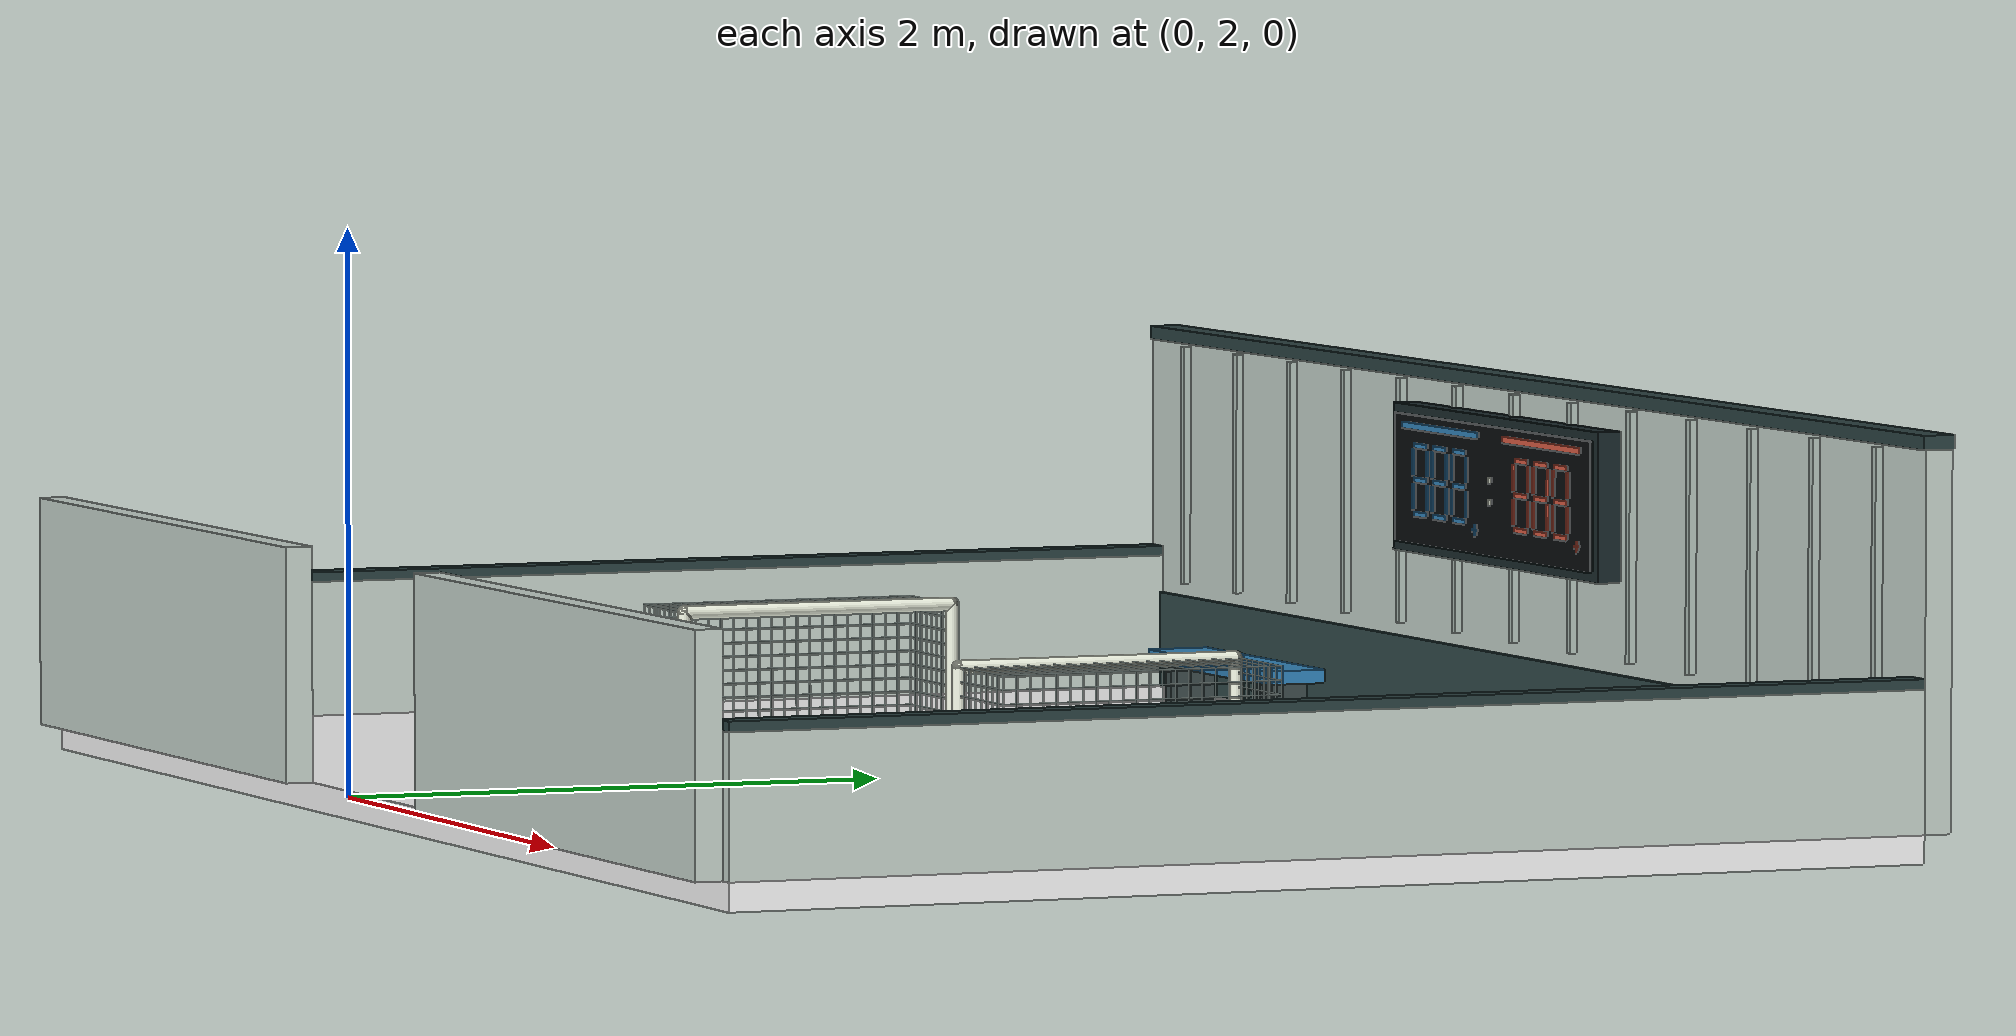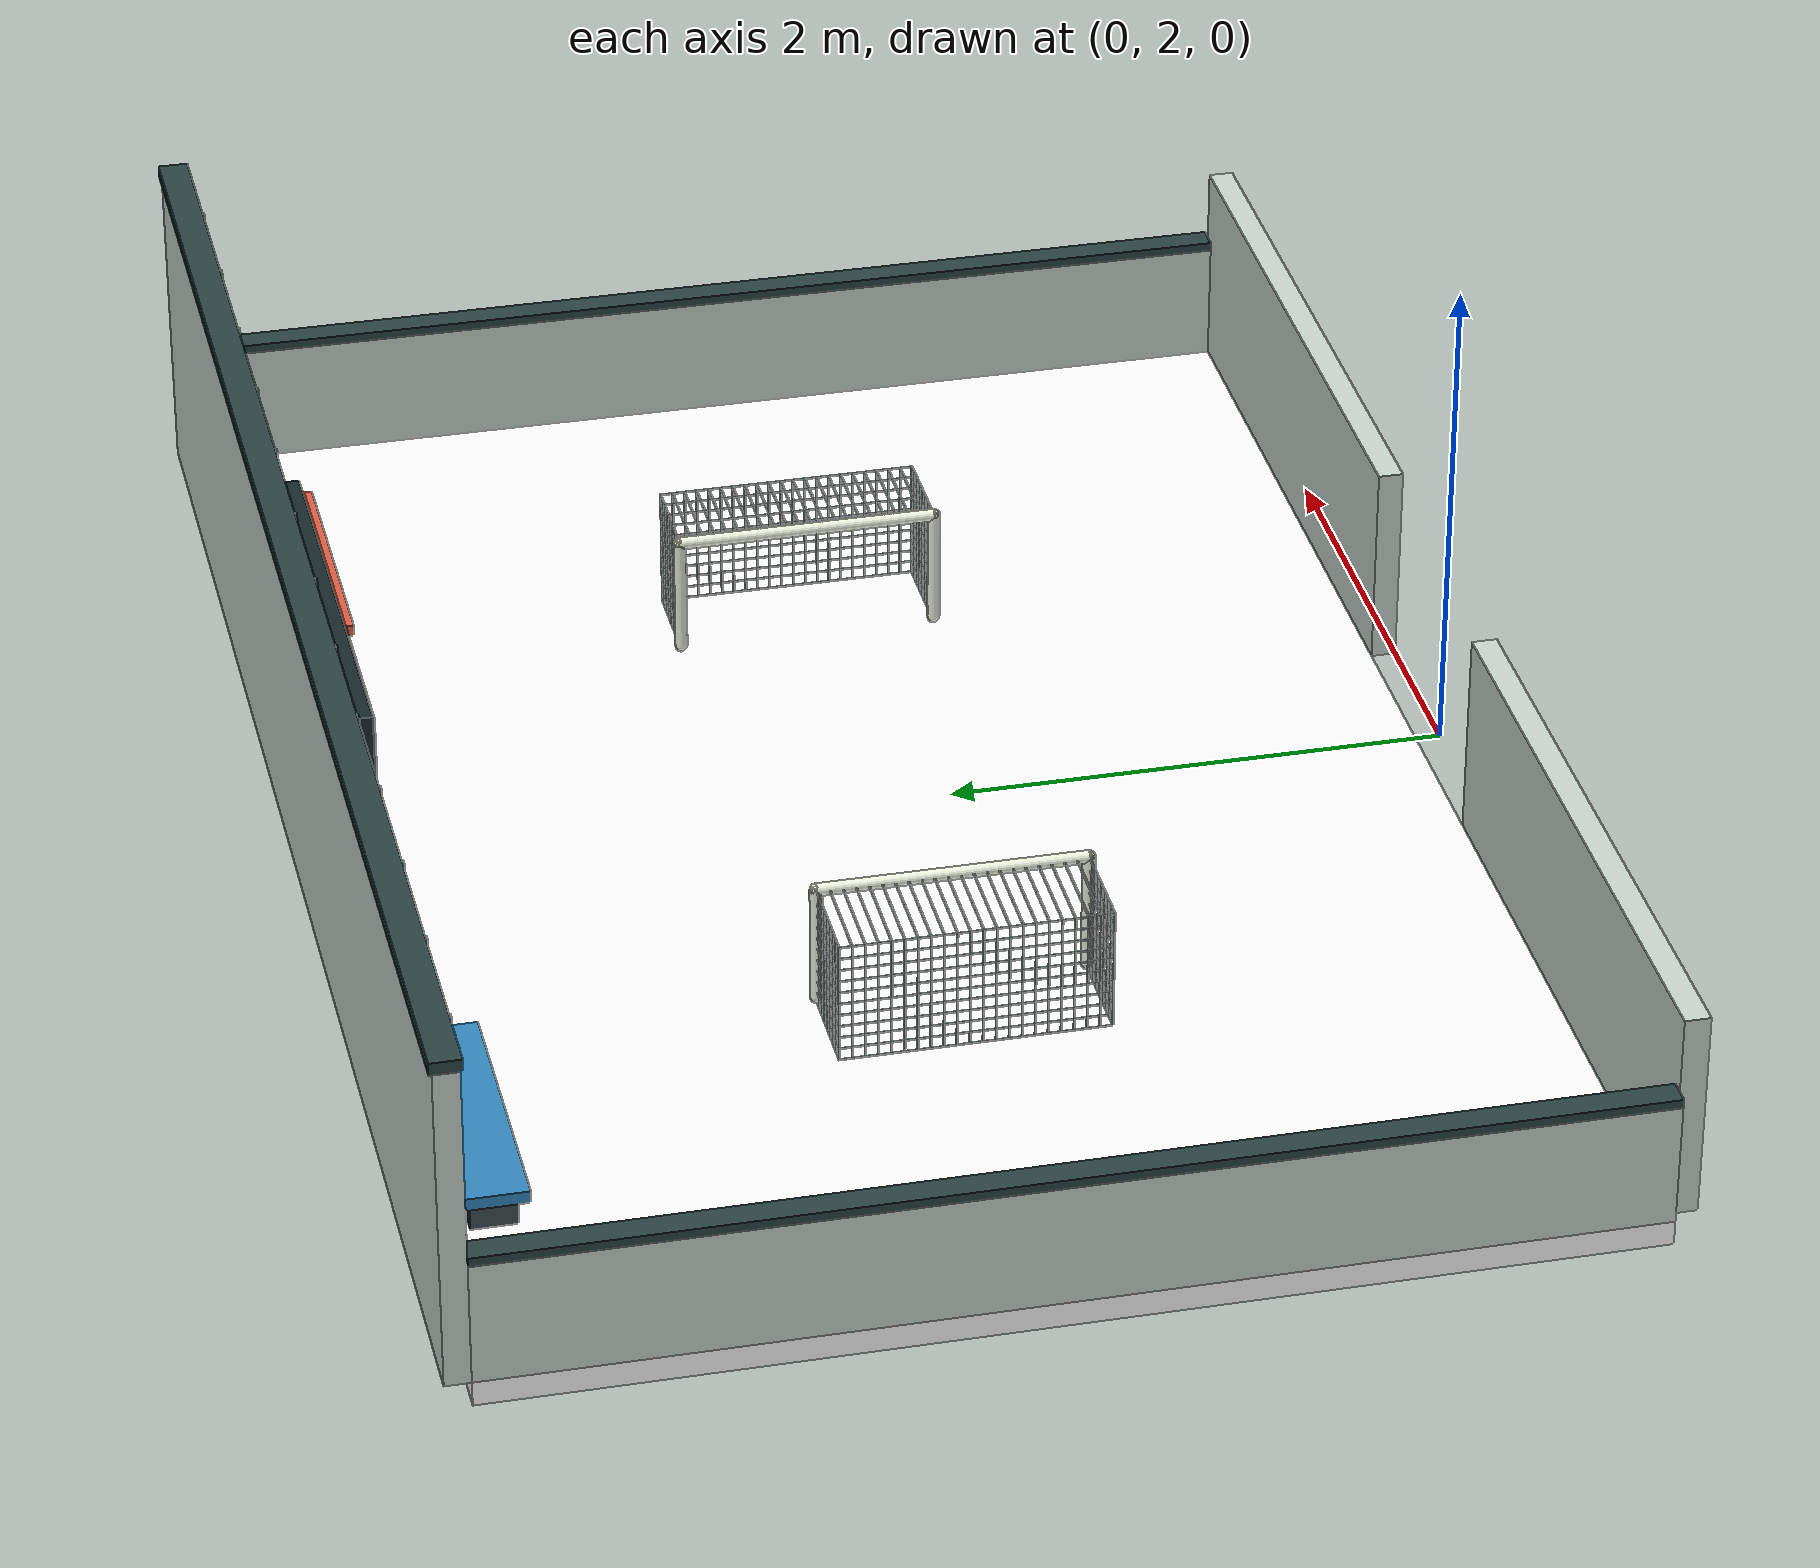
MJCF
<mujoco model="microduck_football_club">
  <worldbody>
    <geom name="football_floor" type="box" size="3.35 2.2 0.05" rgba="1 1 1 1" group="0" pos="0 4.3 -0.05" material="football_surface" />
    <site name="football_goal_blue" type="box" pos="-1.306 4.3 0" size=".5 .48 .006" quat="0 0 0 1" rgba="0 0 0 0" group="5" />
    <geom name="football_blue_post_-1" type="capsule" size="0.025" rgba="0.93 0.95 0.88 1" group="0" fromto="-1.3 3.775 0.025 -1.3 3.775 0.505" />
    <geom name="football_blue_post_1" type="capsule" size="0.025" rgba="0.93 0.95 0.88 1" group="0" fromto="-1.3 4.825 0.025 -1.3 4.825 0.505" />
    <geom name="football_blue_crossbar" type="capsule" size="0.025" rgba="0.93 0.95 0.88 1" group="0" fromto="-1.3 3.775 0.505 -1.3 4.825 0.505" />
    <geom name="football_blue_net_0" type="capsule" size="0.0025" rgba="0.73 0.81 0.79 1" group="0" fromto="-1.7 3.775 0.005 -1.7 3.775 0.505" friction=".4 .005 .0001" solref=".03 1" />
    <geom name="football_blue_net_1" type="capsule" size="0.0025" rgba="0.73 0.81 0.79 1" group="0" fromto="-1.3 3.775 0.505 -1.7 3.775 0.505" friction=".4 .005 .0001" solref=".03 1" />
    <geom name="football_blue_net_2" type="capsule" size="0.0025" rgba="0.73 0.81 0.79 1" group="0" fromto="-1.7 3.825 0.005 -1.7 3.825 0.505" friction=".4 .005 .0001" solref=".03 1" />
    <geom name="football_blue_net_3" type="capsule" size="0.0025" rgba="0.73 0.81 0.79 1" group="0" fromto="-1.3 3.825 0.505 -1.7 3.825 0.505" friction=".4 .005 .0001" solref=".03 1" />
    <geom name="football_blue_net_4" type="capsule" size="0.0025" rgba="0.73 0.81 0.79 1" group="0" fromto="-1.7 3.875 0.005 -1.7 3.875 0.505" friction=".4 .005 .0001" solref=".03 1" />
    <geom name="football_blue_net_5" type="capsule" size="0.0025" rgba="0.73 0.81 0.79 1" group="0" fromto="-1.3 3.875 0.505 -1.7 3.875 0.505" friction=".4 .005 .0001" solref=".03 1" />
    <geom name="football_blue_net_6" type="capsule" size="0.0025" rgba="0.73 0.81 0.79 1" group="0" fromto="-1.7 3.925 0.005 -1.7 3.925 0.505" friction=".4 .005 .0001" solref=".03 1" />
    <geom name="football_blue_net_7" type="capsule" size="0.0025" rgba="0.73 0.81 0.79 1" group="0" fromto="-1.3 3.925 0.505 -1.7 3.925 0.505" friction=".4 .005 .0001" solref=".03 1" />
    <geom name="football_blue_net_8" type="capsule" size="0.0025" rgba="0.73 0.81 0.79 1" group="0" fromto="-1.7 3.975 0.005 -1.7 3.975 0.505" friction=".4 .005 .0001" solref=".03 1" />
    <geom name="football_blue_net_9" type="capsule" size="0.0025" rgba="0.73 0.81 0.79 1" group="0" fromto="-1.3 3.975 0.505 -1.7 3.975 0.505" friction=".4 .005 .0001" solref=".03 1" />
    <geom name="football_blue_net_10" type="capsule" size="0.0025" rgba="0.73 0.81 0.79 1" group="0" fromto="-1.7 4.025 0.005 -1.7 4.025 0.505" friction=".4 .005 .0001" solref=".03 1" />
    <geom name="football_blue_net_11" type="capsule" size="0.0025" rgba="0.73 0.81 0.79 1" group="0" fromto="-1.3 4.025 0.505 -1.7 4.025 0.505" friction=".4 .005 .0001" solref=".03 1" />
    <geom name="football_blue_net_12" type="capsule" size="0.0025" rgba="0.73 0.81 0.79 1" group="0" fromto="-1.7 4.075 0.005 -1.7 4.075 0.505" friction=".4 .005 .0001" solref=".03 1" />
    <geom name="football_blue_net_13" type="capsule" size="0.0025" rgba="0.73 0.81 0.79 1" group="0" fromto="-1.3 4.075 0.505 -1.7 4.075 0.505" friction=".4 .005 .0001" solref=".03 1" />
    <geom name="football_blue_net_14" type="capsule" size="0.0025" rgba="0.73 0.81 0.79 1" group="0" fromto="-1.7 4.125 0.005 -1.7 4.125 0.505" friction=".4 .005 .0001" solref=".03 1" />
    <geom name="football_blue_net_15" type="capsule" size="0.0025" rgba="0.73 0.81 0.79 1" group="0" fromto="-1.3 4.125 0.505 -1.7 4.125 0.505" friction=".4 .005 .0001" solref=".03 1" />
    <geom name="football_blue_net_16" type="capsule" size="0.0025" rgba="0.73 0.81 0.79 1" group="0" fromto="-1.7 4.175 0.005 -1.7 4.175 0.505" friction=".4 .005 .0001" solref=".03 1" />
    <geom name="football_blue_net_17" type="capsule" size="0.0025" rgba="0.73 0.81 0.79 1" group="0" fromto="-1.3 4.175 0.505 -1.7 4.175 0.505" friction=".4 .005 .0001" solref=".03 1" />
    <geom name="football_blue_net_18" type="capsule" size="0.0025" rgba="0.73 0.81 0.79 1" group="0" fromto="-1.7 4.225 0.005 -1.7 4.225 0.505" friction=".4 .005 .0001" solref=".03 1" />
    <geom name="football_blue_net_19" type="capsule" size="0.0025" rgba="0.73 0.81 0.79 1" group="0" fromto="-1.3 4.225 0.505 -1.7 4.225 0.505" friction=".4 .005 .0001" solref=".03 1" />
    <geom name="football_blue_net_20" type="capsule" size="0.0025" rgba="0.73 0.81 0.79 1" group="0" fromto="-1.7 4.275 0.005 -1.7 4.275 0.505" friction=".4 .005 .0001" solref=".03 1" />
    <geom name="football_blue_net_21" type="capsule" size="0.0025" rgba="0.73 0.81 0.79 1" group="0" fromto="-1.3 4.275 0.505 -1.7 4.275 0.505" friction=".4 .005 .0001" solref=".03 1" />
    <geom name="football_blue_net_22" type="capsule" size="0.0025" rgba="0.73 0.81 0.79 1" group="0" fromto="-1.7 4.325 0.005 -1.7 4.325 0.505" friction=".4 .005 .0001" solref=".03 1" />
    <geom name="football_blue_net_23" type="capsule" size="0.0025" rgba="0.73 0.81 0.79 1" group="0" fromto="-1.3 4.325 0.505 -1.7 4.325 0.505" friction=".4 .005 .0001" solref=".03 1" />
    <geom name="football_blue_net_24" type="capsule" size="0.0025" rgba="0.73 0.81 0.79 1" group="0" fromto="-1.7 4.375 0.005 -1.7 4.375 0.505" friction=".4 .005 .0001" solref=".03 1" />
    <geom name="football_blue_net_25" type="capsule" size="0.0025" rgba="0.73 0.81 0.79 1" group="0" fromto="-1.3 4.375 0.505 -1.7 4.375 0.505" friction=".4 .005 .0001" solref=".03 1" />
    <geom name="football_blue_net_26" type="capsule" size="0.0025" rgba="0.73 0.81 0.79 1" group="0" fromto="-1.7 4.425 0.005 -1.7 4.425 0.505" friction=".4 .005 .0001" solref=".03 1" />
    <geom name="football_blue_net_27" type="capsule" size="0.0025" rgba="0.73 0.81 0.79 1" group="0" fromto="-1.3 4.425 0.505 -1.7 4.425 0.505" friction=".4 .005 .0001" solref=".03 1" />
    <geom name="football_blue_net_28" type="capsule" size="0.0025" rgba="0.73 0.81 0.79 1" group="0" fromto="-1.7 4.475 0.005 -1.7 4.475 0.505" friction=".4 .005 .0001" solref=".03 1" />
    <geom name="football_blue_net_29" type="capsule" size="0.0025" rgba="0.73 0.81 0.79 1" group="0" fromto="-1.3 4.475 0.505 -1.7 4.475 0.505" friction=".4 .005 .0001" solref=".03 1" />
    <geom name="football_blue_net_30" type="capsule" size="0.0025" rgba="0.73 0.81 0.79 1" group="0" fromto="-1.7 4.525 0.005 -1.7 4.525 0.505" friction=".4 .005 .0001" solref=".03 1" />
    <geom name="football_blue_net_31" type="capsule" size="0.0025" rgba="0.73 0.81 0.79 1" group="0" fromto="-1.3 4.525 0.505 -1.7 4.525 0.505" friction=".4 .005 .0001" solref=".03 1" />
    <geom name="football_blue_net_32" type="capsule" size="0.0025" rgba="0.73 0.81 0.79 1" group="0" fromto="-1.7 4.575 0.005 -1.7 4.575 0.505" friction=".4 .005 .0001" solref=".03 1" />
    <geom name="football_blue_net_33" type="capsule" size="0.0025" rgba="0.73 0.81 0.79 1" group="0" fromto="-1.3 4.575 0.505 -1.7 4.575 0.505" friction=".4 .005 .0001" solref=".03 1" />
    <geom name="football_blue_net_34" type="capsule" size="0.0025" rgba="0.73 0.81 0.79 1" group="0" fromto="-1.7 4.625 0.005 -1.7 4.625 0.505" friction=".4 .005 .0001" solref=".03 1" />
    <geom name="football_blue_net_35" type="capsule" size="0.0025" rgba="0.73 0.81 0.79 1" group="0" fromto="-1.3 4.625 0.505 -1.7 4.625 0.505" friction=".4 .005 .0001" solref=".03 1" />
    <geom name="football_blue_net_36" type="capsule" size="0.0025" rgba="0.73 0.81 0.79 1" group="0" fromto="-1.7 4.675 0.005 -1.7 4.675 0.505" friction=".4 .005 .0001" solref=".03 1" />
    <geom name="football_blue_net_37" type="capsule" size="0.0025" rgba="0.73 0.81 0.79 1" group="0" fromto="-1.3 4.675 0.505 -1.7 4.675 0.505" friction=".4 .005 .0001" solref=".03 1" />
    <geom name="football_blue_net_38" type="capsule" size="0.0025" rgba="0.73 0.81 0.79 1" group="0" fromto="-1.7 4.725 0.005 -1.7 4.725 0.505" friction=".4 .005 .0001" solref=".03 1" />
    <geom name="football_blue_net_39" type="capsule" size="0.0025" rgba="0.73 0.81 0.79 1" group="0" fromto="-1.3 4.725 0.505 -1.7 4.725 0.505" friction=".4 .005 .0001" solref=".03 1" />
    <geom name="football_blue_net_40" type="capsule" size="0.0025" rgba="0.73 0.81 0.79 1" group="0" fromto="-1.7 4.775 0.005 -1.7 4.775 0.505" friction=".4 .005 .0001" solref=".03 1" />
    <geom name="football_blue_net_41" type="capsule" size="0.0025" rgba="0.73 0.81 0.79 1" group="0" fromto="-1.3 4.775 0.505 -1.7 4.775 0.505" friction=".4 .005 .0001" solref=".03 1" />
    <geom name="football_blue_net_42" type="capsule" size="0.0025" rgba="0.73 0.81 0.79 1" group="0" fromto="-1.7 4.825 0.005 -1.7 4.825 0.505" friction=".4 .005 .0001" solref=".03 1" />
    <geom name="football_blue_net_43" type="capsule" size="0.0025" rgba="0.73 0.81 0.79 1" group="0" fromto="-1.3 4.825 0.505 -1.7 4.825 0.505" friction=".4 .005 .0001" solref=".03 1" />
    <geom name="football_blue_net_44" type="capsule" size="0.0025" rgba="0.73 0.81 0.79 1" group="0" fromto="-1.7 3.775 0.005 -1.7 4.825 0.005" friction=".4 .005 .0001" solref=".03 1" />
    <geom name="football_blue_net_45" type="capsule" size="0.0025" rgba="0.73 0.81 0.79 1" group="0" fromto="-1.3 3.775 0.005 -1.7 3.775 0.005" friction=".4 .005 .0001" solref=".03 1" />
    <geom name="football_blue_net_46" type="capsule" size="0.0025" rgba="0.73 0.81 0.79 1" group="0" fromto="-1.3 4.825 0.005 -1.7 4.825 0.005" friction=".4 .005 .0001" solref=".03 1" />
    <geom name="football_blue_net_47" type="capsule" size="0.0025" rgba="0.73 0.81 0.79 1" group="0" fromto="-1.7 3.775 0.055 -1.7 4.825 0.055" friction=".4 .005 .0001" solref=".03 1" />
    <geom name="football_blue_net_48" type="capsule" size="0.0025" rgba="0.73 0.81 0.79 1" group="0" fromto="-1.3 3.775 0.055 -1.7 3.775 0.055" friction=".4 .005 .0001" solref=".03 1" />
    <geom name="football_blue_net_49" type="capsule" size="0.0025" rgba="0.73 0.81 0.79 1" group="0" fromto="-1.3 4.825 0.055 -1.7 4.825 0.055" friction=".4 .005 .0001" solref=".03 1" />
    <geom name="football_blue_net_50" type="capsule" size="0.0025" rgba="0.73 0.81 0.79 1" group="0" fromto="-1.7 3.775 0.105 -1.7 4.825 0.105" friction=".4 .005 .0001" solref=".03 1" />
    <geom name="football_blue_net_51" type="capsule" size="0.0025" rgba="0.73 0.81 0.79 1" group="0" fromto="-1.3 3.775 0.105 -1.7 3.775 0.105" friction=".4 .005 .0001" solref=".03 1" />
    <geom name="football_blue_net_52" type="capsule" size="0.0025" rgba="0.73 0.81 0.79 1" group="0" fromto="-1.3 4.825 0.105 -1.7 4.825 0.105" friction=".4 .005 .0001" solref=".03 1" />
    <geom name="football_blue_net_53" type="capsule" size="0.0025" rgba="0.73 0.81 0.79 1" group="0" fromto="-1.7 3.775 0.155 -1.7 4.825 0.155" friction=".4 .005 .0001" solref=".03 1" />
    <geom name="football_blue_net_54" type="capsule" size="0.0025" rgba="0.73 0.81 0.79 1" group="0" fromto="-1.3 3.775 0.155 -1.7 3.775 0.155" friction=".4 .005 .0001" solref=".03 1" />
    <geom name="football_blue_net_55" type="capsule" size="0.0025" rgba="0.73 0.81 0.79 1" group="0" fromto="-1.3 4.825 0.155 -1.7 4.825 0.155" friction=".4 .005 .0001" solref=".03 1" />
    <geom name="football_blue_net_56" type="capsule" size="0.0025" rgba="0.73 0.81 0.79 1" group="0" fromto="-1.7 3.775 0.205 -1.7 4.825 0.205" friction=".4 .005 .0001" solref=".03 1" />
    <geom name="football_blue_net_57" type="capsule" size="0.0025" rgba="0.73 0.81 0.79 1" group="0" fromto="-1.3 3.775 0.205 -1.7 3.775 0.205" friction=".4 .005 .0001" solref=".03 1" />
    <geom name="football_blue_net_58" type="capsule" size="0.0025" rgba="0.73 0.81 0.79 1" group="0" fromto="-1.3 4.825 0.205 -1.7 4.825 0.205" friction=".4 .005 .0001" solref=".03 1" />
    <geom name="football_blue_net_59" type="capsule" size="0.0025" rgba="0.73 0.81 0.79 1" group="0" fromto="-1.7 3.775 0.255 -1.7 4.825 0.255" friction=".4 .005 .0001" solref=".03 1" />
    <geom name="football_blue_net_60" type="capsule" size="0.0025" rgba="0.73 0.81 0.79 1" group="0" fromto="-1.3 3.775 0.255 -1.7 3.775 0.255" friction=".4 .005 .0001" solref=".03 1" />
    <geom name="football_blue_net_61" type="capsule" size="0.0025" rgba="0.73 0.81 0.79 1" group="0" fromto="-1.3 4.825 0.255 -1.7 4.825 0.255" friction=".4 .005 .0001" solref=".03 1" />
    <geom name="football_blue_net_62" type="capsule" size="0.0025" rgba="0.73 0.81 0.79 1" group="0" fromto="-1.7 3.775 0.305 -1.7 4.825 0.305" friction=".4 .005 .0001" solref=".03 1" />
    <geom name="football_blue_net_63" type="capsule" size="0.0025" rgba="0.73 0.81 0.79 1" group="0" fromto="-1.3 3.775 0.305 -1.7 3.775 0.305" friction=".4 .005 .0001" solref=".03 1" />
    <geom name="football_blue_net_64" type="capsule" size="0.0025" rgba="0.73 0.81 0.79 1" group="0" fromto="-1.3 4.825 0.305 -1.7 4.825 0.305" friction=".4 .005 .0001" solref=".03 1" />
    <geom name="football_blue_net_65" type="capsule" size="0.0025" rgba="0.73 0.81 0.79 1" group="0" fromto="-1.7 3.775 0.355 -1.7 4.825 0.355" friction=".4 .005 .0001" solref=".03 1" />
    <geom name="football_blue_net_66" type="capsule" size="0.0025" rgba="0.73 0.81 0.79 1" group="0" fromto="-1.3 3.775 0.355 -1.7 3.775 0.355" friction=".4 .005 .0001" solref=".03 1" />
    <geom name="football_blue_net_67" type="capsule" size="0.0025" rgba="0.73 0.81 0.79 1" group="0" fromto="-1.3 4.825 0.355 -1.7 4.825 0.355" friction=".4 .005 .0001" solref=".03 1" />
    <geom name="football_blue_net_68" type="capsule" size="0.0025" rgba="0.73 0.81 0.79 1" group="0" fromto="-1.7 3.775 0.405 -1.7 4.825 0.405" friction=".4 .005 .0001" solref=".03 1" />
    <geom name="football_blue_net_69" type="capsule" size="0.0025" rgba="0.73 0.81 0.79 1" group="0" fromto="-1.3 3.775 0.405 -1.7 3.775 0.405" friction=".4 .005 .0001" solref=".03 1" />
    <geom name="football_blue_net_70" type="capsule" size="0.0025" rgba="0.73 0.81 0.79 1" group="0" fromto="-1.3 4.825 0.405 -1.7 4.825 0.405" friction=".4 .005 .0001" solref=".03 1" />
    <geom name="football_blue_net_71" type="capsule" size="0.0025" rgba="0.73 0.81 0.79 1" group="0" fromto="-1.7 3.775 0.455 -1.7 4.825 0.455" friction=".4 .005 .0001" solref=".03 1" />
    <geom name="football_blue_net_72" type="capsule" size="0.0025" rgba="0.73 0.81 0.79 1" group="0" fromto="-1.3 3.775 0.455 -1.7 3.775 0.455" friction=".4 .005 .0001" solref=".03 1" />
    <geom name="football_blue_net_73" type="capsule" size="0.0025" rgba="0.73 0.81 0.79 1" group="0" fromto="-1.3 4.825 0.455 -1.7 4.825 0.455" friction=".4 .005 .0001" solref=".03 1" />
    <geom name="football_blue_net_74" type="capsule" size="0.0025" rgba="0.73 0.81 0.79 1" group="0" fromto="-1.7 3.775 0.505 -1.7 4.825 0.505" friction=".4 .005 .0001" solref=".03 1" />
    <geom name="football_blue_net_75" type="capsule" size="0.0025" rgba="0.73 0.81 0.79 1" group="0" fromto="-1.3 3.775 0.505 -1.7 3.775 0.505" friction=".4 .005 .0001" solref=".03 1" />
    <geom name="football_blue_net_76" type="capsule" size="0.0025" rgba="0.73 0.81 0.79 1" group="0" fromto="-1.3 4.825 0.505 -1.7 4.825 0.505" friction=".4 .005 .0001" solref=".03 1" />
    <geom name="football_blue_net_77" type="capsule" size="0.0025" rgba="0.73 0.81 0.79 1" group="0" fromto="-1.35 3.775 0.005 -1.35 3.775 0.505" friction=".4 .005 .0001" solref=".03 1" />
    <geom name="football_blue_net_78" type="capsule" size="0.0025" rgba="0.73 0.81 0.79 1" group="0" fromto="-1.4 3.775 0.005 -1.4 3.775 0.505" friction=".4 .005 .0001" solref=".03 1" />
    <geom name="football_blue_net_79" type="capsule" size="0.0025" rgba="0.73 0.81 0.79 1" group="0" fromto="-1.45 3.775 0.005 -1.45 3.775 0.505" friction=".4 .005 .0001" solref=".03 1" />
    <geom name="football_blue_net_80" type="capsule" size="0.0025" rgba="0.73 0.81 0.79 1" group="0" fromto="-1.5 3.775 0.005 -1.5 3.775 0.505" friction=".4 .005 .0001" solref=".03 1" />
    <geom name="football_blue_net_81" type="capsule" size="0.0025" rgba="0.73 0.81 0.79 1" group="0" fromto="-1.55 3.775 0.005 -1.55 3.775 0.505" friction=".4 .005 .0001" solref=".03 1" />
    <geom name="football_blue_net_82" type="capsule" size="0.0025" rgba="0.73 0.81 0.79 1" group="0" fromto="-1.6 3.775 0.005 -1.6 3.775 0.505" friction=".4 .005 .0001" solref=".03 1" />
    <geom name="football_blue_net_83" type="capsule" size="0.0025" rgba="0.73 0.81 0.79 1" group="0" fromto="-1.65 3.775 0.005 -1.65 3.775 0.505" friction=".4 .005 .0001" solref=".03 1" />
    <geom name="football_blue_net_84" type="capsule" size="0.0025" rgba="0.73 0.81 0.79 1" group="0" fromto="-1.35 4.825 0.005 -1.35 4.825 0.505" friction=".4 .005 .0001" solref=".03 1" />
    <geom name="football_blue_net_85" type="capsule" size="0.0025" rgba="0.73 0.81 0.79 1" group="0" fromto="-1.4 4.825 0.005 -1.4 4.825 0.505" friction=".4 .005 .0001" solref=".03 1" />
    <geom name="football_blue_net_86" type="capsule" size="0.0025" rgba="0.73 0.81 0.79 1" group="0" fromto="-1.45 4.825 0.005 -1.45 4.825 0.505" friction=".4 .005 .0001" solref=".03 1" />
    <geom name="football_blue_net_87" type="capsule" size="0.0025" rgba="0.73 0.81 0.79 1" group="0" fromto="-1.5 4.825 0.005 -1.5 4.825 0.505" friction=".4 .005 .0001" solref=".03 1" />
    <geom name="football_blue_net_88" type="capsule" size="0.0025" rgba="0.73 0.81 0.79 1" group="0" fromto="-1.55 4.825 0.005 -1.55 4.825 0.505" friction=".4 .005 .0001" solref=".03 1" />
    <geom name="football_blue_net_89" type="capsule" size="0.0025" rgba="0.73 0.81 0.79 1" group="0" fromto="-1.6 4.825 0.005 -1.6 4.825 0.505" friction=".4 .005 .0001" solref=".03 1" />
    <geom name="football_blue_net_90" type="capsule" size="0.0025" rgba="0.73 0.81 0.79 1" group="0" fromto="-1.65 4.825 0.005 -1.65 4.825 0.505" friction=".4 .005 .0001" solref=".03 1" />
    <site name="football_goal_coral" type="box" pos="1.306 4.3 0" size=".5 .48 .006" quat="1 0 0 0" rgba="0 0 0 0" group="5" />
    <geom name="football_coral_post_-1" type="capsule" size="0.025" rgba="0.93 0.95 0.88 1" group="0" fromto="1.3 3.775 0.025 1.3 3.775 0.505" />
    <geom name="football_coral_post_1" type="capsule" size="0.025" rgba="0.93 0.95 0.88 1" group="0" fromto="1.3 4.825 0.025 1.3 4.825 0.505" />
    <geom name="football_coral_crossbar" type="capsule" size="0.025" rgba="0.93 0.95 0.88 1" group="0" fromto="1.3 3.775 0.505 1.3 4.825 0.505" />
    <geom name="football_coral_net_0" type="capsule" size="0.0025" rgba="0.73 0.81 0.79 1" group="0" fromto="1.7 3.775 0.005 1.7 3.775 0.505" friction=".4 .005 .0001" solref=".03 1" />
    <geom name="football_coral_net_1" type="capsule" size="0.0025" rgba="0.73 0.81 0.79 1" group="0" fromto="1.3 3.775 0.505 1.7 3.775 0.505" friction=".4 .005 .0001" solref=".03 1" />
    <geom name="football_coral_net_2" type="capsule" size="0.0025" rgba="0.73 0.81 0.79 1" group="0" fromto="1.7 3.825 0.005 1.7 3.825 0.505" friction=".4 .005 .0001" solref=".03 1" />
    <geom name="football_coral_net_3" type="capsule" size="0.0025" rgba="0.73 0.81 0.79 1" group="0" fromto="1.3 3.825 0.505 1.7 3.825 0.505" friction=".4 .005 .0001" solref=".03 1" />
    <geom name="football_coral_net_4" type="capsule" size="0.0025" rgba="0.73 0.81 0.79 1" group="0" fromto="1.7 3.875 0.005 1.7 3.875 0.505" friction=".4 .005 .0001" solref=".03 1" />
    <geom name="football_coral_net_5" type="capsule" size="0.0025" rgba="0.73 0.81 0.79 1" group="0" fromto="1.3 3.875 0.505 1.7 3.875 0.505" friction=".4 .005 .0001" solref=".03 1" />
    <geom name="football_coral_net_6" type="capsule" size="0.0025" rgba="0.73 0.81 0.79 1" group="0" fromto="1.7 3.925 0.005 1.7 3.925 0.505" friction=".4 .005 .0001" solref=".03 1" />
    <geom name="football_coral_net_7" type="capsule" size="0.0025" rgba="0.73 0.81 0.79 1" group="0" fromto="1.3 3.925 0.505 1.7 3.925 0.505" friction=".4 .005 .0001" solref=".03 1" />
    <geom name="football_coral_net_8" type="capsule" size="0.0025" rgba="0.73 0.81 0.79 1" group="0" fromto="1.7 3.975 0.005 1.7 3.975 0.505" friction=".4 .005 .0001" solref=".03 1" />
    <geom name="football_coral_net_9" type="capsule" size="0.0025" rgba="0.73 0.81 0.79 1" group="0" fromto="1.3 3.975 0.505 1.7 3.975 0.505" friction=".4 .005 .0001" solref=".03 1" />
    <geom name="football_coral_net_10" type="capsule" size="0.0025" rgba="0.73 0.81 0.79 1" group="0" fromto="1.7 4.025 0.005 1.7 4.025 0.505" friction=".4 .005 .0001" solref=".03 1" />
    <geom name="football_coral_net_11" type="capsule" size="0.0025" rgba="0.73 0.81 0.79 1" group="0" fromto="1.3 4.025 0.505 1.7 4.025 0.505" friction=".4 .005 .0001" solref=".03 1" />
    <geom name="football_coral_net_12" type="capsule" size="0.0025" rgba="0.73 0.81 0.79 1" group="0" fromto="1.7 4.075 0.005 1.7 4.075 0.505" friction=".4 .005 .0001" solref=".03 1" />
    <geom name="football_coral_net_13" type="capsule" size="0.0025" rgba="0.73 0.81 0.79 1" group="0" fromto="1.3 4.075 0.505 1.7 4.075 0.505" friction=".4 .005 .0001" solref=".03 1" />
    <geom name="football_coral_net_14" type="capsule" size="0.0025" rgba="0.73 0.81 0.79 1" group="0" fromto="1.7 4.125 0.005 1.7 4.125 0.505" friction=".4 .005 .0001" solref=".03 1" />
    <geom name="football_coral_net_15" type="capsule" size="0.0025" rgba="0.73 0.81 0.79 1" group="0" fromto="1.3 4.125 0.505 1.7 4.125 0.505" friction=".4 .005 .0001" solref=".03 1" />
    <geom name="football_coral_net_16" type="capsule" size="0.0025" rgba="0.73 0.81 0.79 1" group="0" fromto="1.7 4.175 0.005 1.7 4.175 0.505" friction=".4 .005 .0001" solref=".03 1" />
    <geom name="football_coral_net_17" type="capsule" size="0.0025" rgba="0.73 0.81 0.79 1" group="0" fromto="1.3 4.175 0.505 1.7 4.175 0.505" friction=".4 .005 .0001" solref=".03 1" />
    <geom name="football_coral_net_18" type="capsule" size="0.0025" rgba="0.73 0.81 0.79 1" group="0" fromto="1.7 4.225 0.005 1.7 4.225 0.505" friction=".4 .005 .0001" solref=".03 1" />
    <geom name="football_coral_net_19" type="capsule" size="0.0025" rgba="0.73 0.81 0.79 1" group="0" fromto="1.3 4.225 0.505 1.7 4.225 0.505" friction=".4 .005 .0001" solref=".03 1" />
    <geom name="football_coral_net_20" type="capsule" size="0.0025" rgba="0.73 0.81 0.79 1" group="0" fromto="1.7 4.275 0.005 1.7 4.275 0.505" friction=".4 .005 .0001" solref=".03 1" />
    <geom name="football_coral_net_21" type="capsule" size="0.0025" rgba="0.73 0.81 0.79 1" group="0" fromto="1.3 4.275 0.505 1.7 4.275 0.505" friction=".4 .005 .0001" solref=".03 1" />
    <geom name="football_coral_net_22" type="capsule" size="0.0025" rgba="0.73 0.81 0.79 1" group="0" fromto="1.7 4.325 0.005 1.7 4.325 0.505" friction=".4 .005 .0001" solref=".03 1" />
    <geom name="football_coral_net_23" type="capsule" size="0.0025" rgba="0.73 0.81 0.79 1" group="0" fromto="1.3 4.325 0.505 1.7 4.325 0.505" friction=".4 .005 .0001" solref=".03 1" />
    <geom name="football_coral_net_24" type="capsule" size="0.0025" rgba="0.73 0.81 0.79 1" group="0" fromto="1.7 4.375 0.005 1.7 4.375 0.505" friction=".4 .005 .0001" solref=".03 1" />
    <geom name="football_coral_net_25" type="capsule" size="0.0025" rgba="0.73 0.81 0.79 1" group="0" fromto="1.3 4.375 0.505 1.7 4.375 0.505" friction=".4 .005 .0001" solref=".03 1" />
    <geom name="football_coral_net_26" type="capsule" size="0.0025" rgba="0.73 0.81 0.79 1" group="0" fromto="1.7 4.425 0.005 1.7 4.425 0.505" friction=".4 .005 .0001" solref=".03 1" />
    <geom name="football_coral_net_27" type="capsule" size="0.0025" rgba="0.73 0.81 0.79 1" group="0" fromto="1.3 4.425 0.505 1.7 4.425 0.505" friction=".4 .005 .0001" solref=".03 1" />
    <geom name="football_coral_net_28" type="capsule" size="0.0025" rgba="0.73 0.81 0.79 1" group="0" fromto="1.7 4.475 0.005 1.7 4.475 0.505" friction=".4 .005 .0001" solref=".03 1" />
    <geom name="football_coral_net_29" type="capsule" size="0.0025" rgba="0.73 0.81 0.79 1" group="0" fromto="1.3 4.475 0.505 1.7 4.475 0.505" friction=".4 .005 .0001" solref=".03 1" />
    <geom name="football_coral_net_30" type="capsule" size="0.0025" rgba="0.73 0.81 0.79 1" group="0" fromto="1.7 4.525 0.005 1.7 4.525 0.505" friction=".4 .005 .0001" solref=".03 1" />
    <geom name="football_coral_net_31" type="capsule" size="0.0025" rgba="0.73 0.81 0.79 1" group="0" fromto="1.3 4.525 0.505 1.7 4.525 0.505" friction=".4 .005 .0001" solref=".03 1" />
    <geom name="football_coral_net_32" type="capsule" size="0.0025" rgba="0.73 0.81 0.79 1" group="0" fromto="1.7 4.575 0.005 1.7 4.575 0.505" friction=".4 .005 .0001" solref=".03 1" />
    <geom name="football_coral_net_33" type="capsule" size="0.0025" rgba="0.73 0.81 0.79 1" group="0" fromto="1.3 4.575 0.505 1.7 4.575 0.505" friction=".4 .005 .0001" solref=".03 1" />
    <geom name="football_coral_net_34" type="capsule" size="0.0025" rgba="0.73 0.81 0.79 1" group="0" fromto="1.7 4.625 0.005 1.7 4.625 0.505" friction=".4 .005 .0001" solref=".03 1" />
    <geom name="football_coral_net_35" type="capsule" size="0.0025" rgba="0.73 0.81 0.79 1" group="0" fromto="1.3 4.625 0.505 1.7 4.625 0.505" friction=".4 .005 .0001" solref=".03 1" />
    <geom name="football_coral_net_36" type="capsule" size="0.0025" rgba="0.73 0.81 0.79 1" group="0" fromto="1.7 4.675 0.005 1.7 4.675 0.505" friction=".4 .005 .0001" solref=".03 1" />
    <geom name="football_coral_net_37" type="capsule" size="0.0025" rgba="0.73 0.81 0.79 1" group="0" fromto="1.3 4.675 0.505 1.7 4.675 0.505" friction=".4 .005 .0001" solref=".03 1" />
    <geom name="football_coral_net_38" type="capsule" size="0.0025" rgba="0.73 0.81 0.79 1" group="0" fromto="1.7 4.725 0.005 1.7 4.725 0.505" friction=".4 .005 .0001" solref=".03 1" />
    <geom name="football_coral_net_39" type="capsule" size="0.0025" rgba="0.73 0.81 0.79 1" group="0" fromto="1.3 4.725 0.505 1.7 4.725 0.505" friction=".4 .005 .0001" solref=".03 1" />
    <geom name="football_coral_net_40" type="capsule" size="0.0025" rgba="0.73 0.81 0.79 1" group="0" fromto="1.7 4.775 0.005 1.7 4.775 0.505" friction=".4 .005 .0001" solref=".03 1" />
    <geom name="football_coral_net_41" type="capsule" size="0.0025" rgba="0.73 0.81 0.79 1" group="0" fromto="1.3 4.775 0.505 1.7 4.775 0.505" friction=".4 .005 .0001" solref=".03 1" />
    <geom name="football_coral_net_42" type="capsule" size="0.0025" rgba="0.73 0.81 0.79 1" group="0" fromto="1.7 4.825 0.005 1.7 4.825 0.505" friction=".4 .005 .0001" solref=".03 1" />
    <geom name="football_coral_net_43" type="capsule" size="0.0025" rgba="0.73 0.81 0.79 1" group="0" fromto="1.3 4.825 0.505 1.7 4.825 0.505" friction=".4 .005 .0001" solref=".03 1" />
    <geom name="football_coral_net_44" type="capsule" size="0.0025" rgba="0.73 0.81 0.79 1" group="0" fromto="1.7 3.775 0.005 1.7 4.825 0.005" friction=".4 .005 .0001" solref=".03 1" />
    <geom name="football_coral_net_45" type="capsule" size="0.0025" rgba="0.73 0.81 0.79 1" group="0" fromto="1.3 3.775 0.005 1.7 3.775 0.005" friction=".4 .005 .0001" solref=".03 1" />
    <geom name="football_coral_net_46" type="capsule" size="0.0025" rgba="0.73 0.81 0.79 1" group="0" fromto="1.3 4.825 0.005 1.7 4.825 0.005" friction=".4 .005 .0001" solref=".03 1" />
    <geom name="football_coral_net_47" type="capsule" size="0.0025" rgba="0.73 0.81 0.79 1" group="0" fromto="1.7 3.775 0.055 1.7 4.825 0.055" friction=".4 .005 .0001" solref=".03 1" />
    <geom name="football_coral_net_48" type="capsule" size="0.0025" rgba="0.73 0.81 0.79 1" group="0" fromto="1.3 3.775 0.055 1.7 3.775 0.055" friction=".4 .005 .0001" solref=".03 1" />
    <geom name="football_coral_net_49" type="capsule" size="0.0025" rgba="0.73 0.81 0.79 1" group="0" fromto="1.3 4.825 0.055 1.7 4.825 0.055" friction=".4 .005 .0001" solref=".03 1" />
    <geom name="football_coral_net_50" type="capsule" size="0.0025" rgba="0.73 0.81 0.79 1" group="0" fromto="1.7 3.775 0.105 1.7 4.825 0.105" friction=".4 .005 .0001" solref=".03 1" />
    <geom name="football_coral_net_51" type="capsule" size="0.0025" rgba="0.73 0.81 0.79 1" group="0" fromto="1.3 3.775 0.105 1.7 3.775 0.105" friction=".4 .005 .0001" solref=".03 1" />
    <geom name="football_coral_net_52" type="capsule" size="0.0025" rgba="0.73 0.81 0.79 1" group="0" fromto="1.3 4.825 0.105 1.7 4.825 0.105" friction=".4 .005 .0001" solref=".03 1" />
    <geom name="football_coral_net_53" type="capsule" size="0.0025" rgba="0.73 0.81 0.79 1" group="0" fromto="1.7 3.775 0.155 1.7 4.825 0.155" friction=".4 .005 .0001" solref=".03 1" />
    <geom name="football_coral_net_54" type="capsule" size="0.0025" rgba="0.73 0.81 0.79 1" group="0" fromto="1.3 3.775 0.155 1.7 3.775 0.155" friction=".4 .005 .0001" solref=".03 1" />
    <geom name="football_coral_net_55" type="capsule" size="0.0025" rgba="0.73 0.81 0.79 1" group="0" fromto="1.3 4.825 0.155 1.7 4.825 0.155" friction=".4 .005 .0001" solref=".03 1" />
    <geom name="football_coral_net_56" type="capsule" size="0.0025" rgba="0.73 0.81 0.79 1" group="0" fromto="1.7 3.775 0.205 1.7 4.825 0.205" friction=".4 .005 .0001" solref=".03 1" />
    <geom name="football_coral_net_57" type="capsule" size="0.0025" rgba="0.73 0.81 0.79 1" group="0" fromto="1.3 3.775 0.205 1.7 3.775 0.205" friction=".4 .005 .0001" solref=".03 1" />
    <geom name="football_coral_net_58" type="capsule" size="0.0025" rgba="0.73 0.81 0.79 1" group="0" fromto="1.3 4.825 0.205 1.7 4.825 0.205" friction=".4 .005 .0001" solref=".03 1" />
    <geom name="football_coral_net_59" type="capsule" size="0.0025" rgba="0.73 0.81 0.79 1" group="0" fromto="1.7 3.775 0.255 1.7 4.825 0.255" friction=".4 .005 .0001" solref=".03 1" />
    <geom name="football_coral_net_60" type="capsule" size="0.0025" rgba="0.73 0.81 0.79 1" group="0" fromto="1.3 3.775 0.255 1.7 3.775 0.255" friction=".4 .005 .0001" solref=".03 1" />
    <geom name="football_coral_net_61" type="capsule" size="0.0025" rgba="0.73 0.81 0.79 1" group="0" fromto="1.3 4.825 0.255 1.7 4.825 0.255" friction=".4 .005 .0001" solref=".03 1" />
    <geom name="football_coral_net_62" type="capsule" size="0.0025" rgba="0.73 0.81 0.79 1" group="0" fromto="1.7 3.775 0.305 1.7 4.825 0.305" friction=".4 .005 .0001" solref=".03 1" />
    <geom name="football_coral_net_63" type="capsule" size="0.0025" rgba="0.73 0.81 0.79 1" group="0" fromto="1.3 3.775 0.305 1.7 3.775 0.305" friction=".4 .005 .0001" solref=".03 1" />
    <geom name="football_coral_net_64" type="capsule" size="0.0025" rgba="0.73 0.81 0.79 1" group="0" fromto="1.3 4.825 0.305 1.7 4.825 0.305" friction=".4 .005 .0001" solref=".03 1" />
    <geom name="football_coral_net_65" type="capsule" size="0.0025" rgba="0.73 0.81 0.79 1" group="0" fromto="1.7 3.775 0.355 1.7 4.825 0.355" friction=".4 .005 .0001" solref=".03 1" />
    <geom name="football_coral_net_66" type="capsule" size="0.0025" rgba="0.73 0.81 0.79 1" group="0" fromto="1.3 3.775 0.355 1.7 3.775 0.355" friction=".4 .005 .0001" solref=".03 1" />
    <geom name="football_coral_net_67" type="capsule" size="0.0025" rgba="0.73 0.81 0.79 1" group="0" fromto="1.3 4.825 0.355 1.7 4.825 0.355" friction=".4 .005 .0001" solref=".03 1" />
    <geom name="football_coral_net_68" type="capsule" size="0.0025" rgba="0.73 0.81 0.79 1" group="0" fromto="1.7 3.775 0.405 1.7 4.825 0.405" friction=".4 .005 .0001" solref=".03 1" />
    <geom name="football_coral_net_69" type="capsule" size="0.0025" rgba="0.73 0.81 0.79 1" group="0" fromto="1.3 3.775 0.405 1.7 3.775 0.405" friction=".4 .005 .0001" solref=".03 1" />
    <geom name="football_coral_net_70" type="capsule" size="0.0025" rgba="0.73 0.81 0.79 1" group="0" fromto="1.3 4.825 0.405 1.7 4.825 0.405" friction=".4 .005 .0001" solref=".03 1" />
    <geom name="football_coral_net_71" type="capsule" size="0.0025" rgba="0.73 0.81 0.79 1" group="0" fromto="1.7 3.775 0.455 1.7 4.825 0.455" friction=".4 .005 .0001" solref=".03 1" />
    <geom name="football_coral_net_72" type="capsule" size="0.0025" rgba="0.73 0.81 0.79 1" group="0" fromto="1.3 3.775 0.455 1.7 3.775 0.455" friction=".4 .005 .0001" solref=".03 1" />
    <geom name="football_coral_net_73" type="capsule" size="0.0025" rgba="0.73 0.81 0.79 1" group="0" fromto="1.3 4.825 0.455 1.7 4.825 0.455" friction=".4 .005 .0001" solref=".03 1" />
    <geom name="football_coral_net_74" type="capsule" size="0.0025" rgba="0.73 0.81 0.79 1" group="0" fromto="1.7 3.775 0.505 1.7 4.825 0.505" friction=".4 .005 .0001" solref=".03 1" />
    <geom name="football_coral_net_75" type="capsule" size="0.0025" rgba="0.73 0.81 0.79 1" group="0" fromto="1.3 3.775 0.505 1.7 3.775 0.505" friction=".4 .005 .0001" solref=".03 1" />
    <geom name="football_coral_net_76" type="capsule" size="0.0025" rgba="0.73 0.81 0.79 1" group="0" fromto="1.3 4.825 0.505 1.7 4.825 0.505" friction=".4 .005 .0001" solref=".03 1" />
    <geom name="football_coral_net_77" type="capsule" size="0.0025" rgba="0.73 0.81 0.79 1" group="0" fromto="1.35 3.775 0.005 1.35 3.775 0.505" friction=".4 .005 .0001" solref=".03 1" />
    <geom name="football_coral_net_78" type="capsule" size="0.0025" rgba="0.73 0.81 0.79 1" group="0" fromto="1.4 3.775 0.005 1.4 3.775 0.505" friction=".4 .005 .0001" solref=".03 1" />
    <geom name="football_coral_net_79" type="capsule" size="0.0025" rgba="0.73 0.81 0.79 1" group="0" fromto="1.45 3.775 0.005 1.45 3.775 0.505" friction=".4 .005 .0001" solref=".03 1" />
    <geom name="football_coral_net_80" type="capsule" size="0.0025" rgba="0.73 0.81 0.79 1" group="0" fromto="1.5 3.775 0.005 1.5 3.775 0.505" friction=".4 .005 .0001" solref=".03 1" />
    <geom name="football_coral_net_81" type="capsule" size="0.0025" rgba="0.73 0.81 0.79 1" group="0" fromto="1.55 3.775 0.005 1.55 3.775 0.505" friction=".4 .005 .0001" solref=".03 1" />
    <geom name="football_coral_net_82" type="capsule" size="0.0025" rgba="0.73 0.81 0.79 1" group="0" fromto="1.6 3.775 0.005 1.6 3.775 0.505" friction=".4 .005 .0001" solref=".03 1" />
    <geom name="football_coral_net_83" type="capsule" size="0.0025" rgba="0.73 0.81 0.79 1" group="0" fromto="1.65 3.775 0.005 1.65 3.775 0.505" friction=".4 .005 .0001" solref=".03 1" />
    <geom name="football_coral_net_84" type="capsule" size="0.0025" rgba="0.73 0.81 0.79 1" group="0" fromto="1.35 4.825 0.005 1.35 4.825 0.505" friction=".4 .005 .0001" solref=".03 1" />
    <geom name="football_coral_net_85" type="capsule" size="0.0025" rgba="0.73 0.81 0.79 1" group="0" fromto="1.4 4.825 0.005 1.4 4.825 0.505" friction=".4 .005 .0001" solref=".03 1" />
    <geom name="football_coral_net_86" type="capsule" size="0.0025" rgba="0.73 0.81 0.79 1" group="0" fromto="1.45 4.825 0.005 1.45 4.825 0.505" friction=".4 .005 .0001" solref=".03 1" />
    <geom name="football_coral_net_87" type="capsule" size="0.0025" rgba="0.73 0.81 0.79 1" group="0" fromto="1.5 4.825 0.005 1.5 4.825 0.505" friction=".4 .005 .0001" solref=".03 1" />
    <geom name="football_coral_net_88" type="capsule" size="0.0025" rgba="0.73 0.81 0.79 1" group="0" fromto="1.55 4.825 0.005 1.55 4.825 0.505" friction=".4 .005 .0001" solref=".03 1" />
    <geom name="football_coral_net_89" type="capsule" size="0.0025" rgba="0.73 0.81 0.79 1" group="0" fromto="1.6 4.825 0.005 1.6 4.825 0.505" friction=".4 .005 .0001" solref=".03 1" />
    <geom name="football_coral_net_90" type="capsule" size="0.0025" rgba="0.73 0.81 0.79 1" group="0" fromto="1.65 4.825 0.005 1.65 4.825 0.505" friction=".4 .005 .0001" solref=".03 1" />
    <geom name="football_south_wing_-1" type="box" size="1.325 0.05 0.42" rgba="0.79 0.84 0.81 1" group="0" pos="-1.975 2.05 0.42" />
    <geom name="football_side_wall_-1" type="box" size="0.05 2.2 0.25" rgba="0.79 0.84 0.81 1" group="0" pos="-3.3 4.3 0.25" />
    <geom name="football_side_rail_-1" type="box" size="0.052 2.2 0.018" rgba="0.17 0.26 0.26 1" group="1" pos="-3.3 4.3 0.518" contype="0" conaffinity="0" />
    <geom name="football_south_wing_1" type="box" size="1.325 0.05 0.42" rgba="0.79 0.84 0.81 1" group="0" pos="1.975 2.05 0.42" />
    <geom name="football_side_wall_1" type="box" size="0.05 2.2 0.25" rgba="0.79 0.84 0.81 1" group="0" pos="3.3 4.3 0.25" />
    <geom name="football_side_rail_1" type="box" size="0.052 2.2 0.018" rgba="0.17 0.26 0.26 1" group="1" pos="3.3 4.3 0.518" contype="0" conaffinity="0" />
    <geom name="football_back_wall" type="box" size="3.35 0.05 0.66" rgba="0.79 0.84 0.81 1" group="0" pos="0 6.55 0.66" />
    <geom name="football_back_wainscot" type="box" size="3.25 0.006 0.18" rgba="0.19 0.29 0.29 1" group="1" pos="0 6.494 0.18" contype="0" conaffinity="0" />
    <geom name="football_back_coping" type="box" size="3.35 0.06 0.025" rgba="0.17 0.26 0.26 1" group="1" pos="0 6.55 1.345" contype="0" conaffinity="0" />
    <geom name="football_wall_rib_0" type="box" size="0.015 0.014 0.45" rgba="0.72 0.78 0.75 1" group="1" pos="-3 6.485 0.86" contype="0" conaffinity="0" />
    <geom name="football_wall_rib_1" type="box" size="0.015 0.014 0.45" rgba="0.72 0.78 0.75 1" group="1" pos="-2.5 6.485 0.86" contype="0" conaffinity="0" />
    <geom name="football_wall_rib_2" type="box" size="0.015 0.014 0.45" rgba="0.72 0.78 0.75 1" group="1" pos="-2 6.485 0.86" contype="0" conaffinity="0" />
    <geom name="football_wall_rib_3" type="box" size="0.015 0.014 0.45" rgba="0.72 0.78 0.75 1" group="1" pos="-1.5 6.485 0.86" contype="0" conaffinity="0" />
    <geom name="football_wall_rib_4" type="box" size="0.015 0.014 0.45" rgba="0.72 0.78 0.75 1" group="1" pos="-1 6.485 0.86" contype="0" conaffinity="0" />
    <geom name="football_wall_rib_5" type="box" size="0.015 0.014 0.45" rgba="0.72 0.78 0.75 1" group="1" pos="-0.5 6.485 0.86" contype="0" conaffinity="0" />
    <geom name="football_wall_rib_6" type="box" size="0.015 0.014 0.45" rgba="0.72 0.78 0.75 1" group="1" pos="0 6.485 0.86" contype="0" conaffinity="0" />
    <geom name="football_wall_rib_7" type="box" size="0.015 0.014 0.45" rgba="0.72 0.78 0.75 1" group="1" pos="0.5 6.485 0.86" contype="0" conaffinity="0" />
    <geom name="football_wall_rib_8" type="box" size="0.015 0.014 0.45" rgba="0.72 0.78 0.75 1" group="1" pos="1 6.485 0.86" contype="0" conaffinity="0" />
    <geom name="football_wall_rib_9" type="box" size="0.015 0.014 0.45" rgba="0.72 0.78 0.75 1" group="1" pos="1.5 6.485 0.86" contype="0" conaffinity="0" />
    <geom name="football_wall_rib_10" type="box" size="0.015 0.014 0.45" rgba="0.72 0.78 0.75 1" group="1" pos="2 6.485 0.86" contype="0" conaffinity="0" />
    <geom name="football_wall_rib_11" type="box" size="0.015 0.014 0.45" rgba="0.72 0.78 0.75 1" group="1" pos="2.5 6.485 0.86" contype="0" conaffinity="0" />
    <geom name="football_wall_rib_12" type="box" size="0.015 0.014 0.45" rgba="0.72 0.78 0.75 1" group="1" pos="3 6.485 0.86" contype="0" conaffinity="0" />
    <geom name="football_bench_-1" type="box" size="0.55 0.12 0.025" rgba="0.20 0.53 0.75 1" group="0" pos="-2 6.26 0.18" />
    <geom name="football_bench_leg_-1_-0.43" type="box" size="0.025 0.09 0.0775" rgba="0.24 0.3 0.3 1" group="0" pos="-2.43 6.26 0.0775" />
    <geom name="football_bench_leg_-1_0.43" type="box" size="0.025 0.09 0.0775" rgba="0.24 0.3 0.3 1" group="0" pos="-1.57 6.26 0.0775" />
    <geom name="football_bench_1" type="box" size="0.55 0.12 0.025" rgba="0.88 0.37 0.27 1" group="0" pos="2 6.26 0.18" />
    <geom name="football_bench_leg_1_-0.43" type="box" size="0.025 0.09 0.0775" rgba="0.24 0.3 0.3 1" group="0" pos="1.57 6.26 0.0775" />
    <geom name="football_bench_leg_1_0.43" type="box" size="0.025 0.09 0.0775" rgba="0.24 0.3 0.3 1" group="0" pos="2.43 6.26 0.0775" />
    <geom name="football_scoreboard_case" type="box" size="0.89 0.045 0.27" rgba="0.1 0.16 0.17 1" group="0" pos="0 6.45 0.96" />
    <geom name="football_scoreboard_face" type="box" size="0.85 0.006 0.235" rgba="0.025 0.04 0.045 1" group="1" pos="0 6.398 0.96" contype="0" conaffinity="0" />
    <geom name="football_scoreboard_blue_stripe" type="box" size="0.33 0.003 0.012" rgba="0.20 0.53 0.75 1" group="1" pos="-0.44 6.389 1.155" contype="0" conaffinity="0" />
    <geom name="score_blue_0_a" type="box" size="0.053 0.003 0.009" rgba="0.20 0.53 0.75 1" group="1" pos="-0.61 6.389 1.085" contype="0" conaffinity="0" />
    <geom name="score_blue_0_b" type="box" size="0.009 0.003 0.048" rgba="0.20 0.53 0.75 1" group="1" pos="-0.548 6.389 1.0225" contype="0" conaffinity="0" />
    <geom name="score_blue_0_c" type="box" size="0.009 0.003 0.048" rgba="0.20 0.53 0.75 1" group="1" pos="-0.548 6.389 0.8975" contype="0" conaffinity="0" />
    <geom name="score_blue_0_d" type="box" size="0.053 0.003 0.009" rgba="0.20 0.53 0.75 1" group="1" pos="-0.61 6.389 0.835" contype="0" conaffinity="0" />
    <geom name="score_blue_0_e" type="box" size="0.009 0.003 0.048" rgba="0.20 0.53 0.75 1" group="1" pos="-0.672 6.389 0.8975" contype="0" conaffinity="0" />
    <geom name="score_blue_0_f" type="box" size="0.009 0.003 0.048" rgba="0.20 0.53 0.75 1" group="1" pos="-0.672 6.389 1.0225" contype="0" conaffinity="0" />
    <geom name="score_blue_0_g" type="box" size="0.053 0.003 0.009" rgba="0.20 0.53 0.75 1" group="1" pos="-0.61 6.389 0.96" contype="0" conaffinity="0" />
    <geom name="score_blue_1_a" type="box" size="0.053 0.003 0.009" rgba="0.20 0.53 0.75 1" group="1" pos="-0.44 6.389 1.085" contype="0" conaffinity="0" />
    <geom name="score_blue_1_b" type="box" size="0.009 0.003 0.048" rgba="0.20 0.53 0.75 1" group="1" pos="-0.378 6.389 1.0225" contype="0" conaffinity="0" />
    <geom name="score_blue_1_c" type="box" size="0.009 0.003 0.048" rgba="0.20 0.53 0.75 1" group="1" pos="-0.378 6.389 0.8975" contype="0" conaffinity="0" />
    <geom name="score_blue_1_d" type="box" size="0.053 0.003 0.009" rgba="0.20 0.53 0.75 1" group="1" pos="-0.44 6.389 0.835" contype="0" conaffinity="0" />
    <geom name="score_blue_1_e" type="box" size="0.009 0.003 0.048" rgba="0.20 0.53 0.75 1" group="1" pos="-0.502 6.389 0.8975" contype="0" conaffinity="0" />
    <geom name="score_blue_1_f" type="box" size="0.009 0.003 0.048" rgba="0.20 0.53 0.75 1" group="1" pos="-0.502 6.389 1.0225" contype="0" conaffinity="0" />
    <geom name="score_blue_1_g" type="box" size="0.053 0.003 0.009" rgba="0.20 0.53 0.75 1" group="1" pos="-0.44 6.389 0.96" contype="0" conaffinity="0" />
    <geom name="score_blue_2_a" type="box" size="0.053 0.003 0.009" rgba="0.20 0.53 0.75 1" group="1" pos="-0.27 6.389 1.085" contype="0" conaffinity="0" />
    <geom name="score_blue_2_b" type="box" size="0.009 0.003 0.048" rgba="0.20 0.53 0.75 1" group="1" pos="-0.208 6.389 1.0225" contype="0" conaffinity="0" />
    <geom name="score_blue_2_c" type="box" size="0.009 0.003 0.048" rgba="0.20 0.53 0.75 1" group="1" pos="-0.208 6.389 0.8975" contype="0" conaffinity="0" />
    <geom name="score_blue_2_d" type="box" size="0.053 0.003 0.009" rgba="0.20 0.53 0.75 1" group="1" pos="-0.27 6.389 0.835" contype="0" conaffinity="0" />
    <geom name="score_blue_2_e" type="box" size="0.009 0.003 0.048" rgba="0.20 0.53 0.75 1" group="1" pos="-0.332 6.389 0.8975" contype="0" conaffinity="0" />
    <geom name="score_blue_2_f" type="box" size="0.009 0.003 0.048" rgba="0.20 0.53 0.75 1" group="1" pos="-0.332 6.389 1.0225" contype="0" conaffinity="0" />
    <geom name="score_blue_2_g" type="box" size="0.053 0.003 0.009" rgba="0.20 0.53 0.75 1" group="1" pos="-0.27 6.389 0.96" contype="0" conaffinity="0" />
    <geom name="score_blue_overflow_0" type="box" size="0.021 0.003 0.005" rgba="0.20 0.53 0.75 1" group="1" pos="-0.13 6.389 0.81" contype="0" conaffinity="0" />
    <geom name="score_blue_overflow_1" type="box" size="0.005 0.003 0.021" rgba="0.20 0.53 0.75 1" group="1" pos="-0.13 6.389 0.81" contype="0" conaffinity="0" />
    <geom name="football_scoreboard_coral_stripe" type="box" size="0.33 0.003 0.012" rgba="0.88 0.37 0.27 1" group="1" pos="0.44 6.389 1.155" contype="0" conaffinity="0" />
    <geom name="score_coral_0_a" type="box" size="0.053 0.003 0.009" rgba="0.88 0.37 0.27 1" group="1" pos="0.27 6.389 1.085" contype="0" conaffinity="0" />
    <geom name="score_coral_0_b" type="box" size="0.009 0.003 0.048" rgba="0.88 0.37 0.27 1" group="1" pos="0.332 6.389 1.0225" contype="0" conaffinity="0" />
    <geom name="score_coral_0_c" type="box" size="0.009 0.003 0.048" rgba="0.88 0.37 0.27 1" group="1" pos="0.332 6.389 0.8975" contype="0" conaffinity="0" />
    <geom name="score_coral_0_d" type="box" size="0.053 0.003 0.009" rgba="0.88 0.37 0.27 1" group="1" pos="0.27 6.389 0.835" contype="0" conaffinity="0" />
    <geom name="score_coral_0_e" type="box" size="0.009 0.003 0.048" rgba="0.88 0.37 0.27 1" group="1" pos="0.208 6.389 0.8975" contype="0" conaffinity="0" />
    <geom name="score_coral_0_f" type="box" size="0.009 0.003 0.048" rgba="0.88 0.37 0.27 1" group="1" pos="0.208 6.389 1.0225" contype="0" conaffinity="0" />
    <geom name="score_coral_0_g" type="box" size="0.053 0.003 0.009" rgba="0.88 0.37 0.27 1" group="1" pos="0.27 6.389 0.96" contype="0" conaffinity="0" />
    <geom name="score_coral_1_a" type="box" size="0.053 0.003 0.009" rgba="0.88 0.37 0.27 1" group="1" pos="0.44 6.389 1.085" contype="0" conaffinity="0" />
    <geom name="score_coral_1_b" type="box" size="0.009 0.003 0.048" rgba="0.88 0.37 0.27 1" group="1" pos="0.502 6.389 1.0225" contype="0" conaffinity="0" />
    <geom name="score_coral_1_c" type="box" size="0.009 0.003 0.048" rgba="0.88 0.37 0.27 1" group="1" pos="0.502 6.389 0.8975" contype="0" conaffinity="0" />
    <geom name="score_coral_1_d" type="box" size="0.053 0.003 0.009" rgba="0.88 0.37 0.27 1" group="1" pos="0.44 6.389 0.835" contype="0" conaffinity="0" />
    <geom name="score_coral_1_e" type="box" size="0.009 0.003 0.048" rgba="0.88 0.37 0.27 1" group="1" pos="0.378 6.389 0.8975" contype="0" conaffinity="0" />
    <geom name="score_coral_1_f" type="box" size="0.009 0.003 0.048" rgba="0.88 0.37 0.27 1" group="1" pos="0.378 6.389 1.0225" contype="0" conaffinity="0" />
    <geom name="score_coral_1_g" type="box" size="0.053 0.003 0.009" rgba="0.88 0.37 0.27 1" group="1" pos="0.44 6.389 0.96" contype="0" conaffinity="0" />
    <geom name="score_coral_2_a" type="box" size="0.053 0.003 0.009" rgba="0.88 0.37 0.27 1" group="1" pos="0.61 6.389 1.085" contype="0" conaffinity="0" />
    <geom name="score_coral_2_b" type="box" size="0.009 0.003 0.048" rgba="0.88 0.37 0.27 1" group="1" pos="0.672 6.389 1.0225" contype="0" conaffinity="0" />
    <geom name="score_coral_2_c" type="box" size="0.009 0.003 0.048" rgba="0.88 0.37 0.27 1" group="1" pos="0.672 6.389 0.8975" contype="0" conaffinity="0" />
    <geom name="score_coral_2_d" type="box" size="0.053 0.003 0.009" rgba="0.88 0.37 0.27 1" group="1" pos="0.61 6.389 0.835" contype="0" conaffinity="0" />
    <geom name="score_coral_2_e" type="box" size="0.009 0.003 0.048" rgba="0.88 0.37 0.27 1" group="1" pos="0.548 6.389 0.8975" contype="0" conaffinity="0" />
    <geom name="score_coral_2_f" type="box" size="0.009 0.003 0.048" rgba="0.88 0.37 0.27 1" group="1" pos="0.548 6.389 1.0225" contype="0" conaffinity="0" />
    <geom name="score_coral_2_g" type="box" size="0.053 0.003 0.009" rgba="0.88 0.37 0.27 1" group="1" pos="0.61 6.389 0.96" contype="0" conaffinity="0" />
    <geom name="score_coral_overflow_0" type="box" size="0.021 0.003 0.005" rgba="0.88 0.37 0.27 1" group="1" pos="0.75 6.389 0.81" contype="0" conaffinity="0" />
    <geom name="score_coral_overflow_1" type="box" size="0.005 0.003 0.021" rgba="0.88 0.37 0.27 1" group="1" pos="0.75 6.389 0.81" contype="0" conaffinity="0" />
    <geom name="football_scoreboard_separator_0.92" type="box" size="0.011 0.003 0.011" rgba="0.93 0.95 0.88 1" group="1" pos="0 6.389 0.92" contype="0" conaffinity="0" />
    <geom name="football_scoreboard_separator_1.0" type="box" size="0.011 0.003 0.011" rgba="0.93 0.95 0.88 1" group="1" pos="0 6.389 1" contype="0" conaffinity="0" />
    <site name="football_spawn_1" pos="-0.35 4.1 0.051" size="0.05" rgba="0 0 0 0" group="5" />
    <site name="football_spawn_2" pos="0.375 4.475 0.051" size="0.05" rgba="0 0 0 0" group="5" />
    <site name="football_spawn_3" pos="0 4.875 0.051" size="0.05" rgba="0 0 0 0" group="5" />
  </worldbody>
  <asset>
    <texture name="football_surface" type="2d" file="../football/surface.png" />
    <material name="football_surface" texture="football_surface" texrepeat="1 1" texuniform="false" specular="0.05" />
  </asset>
</mujoco>
